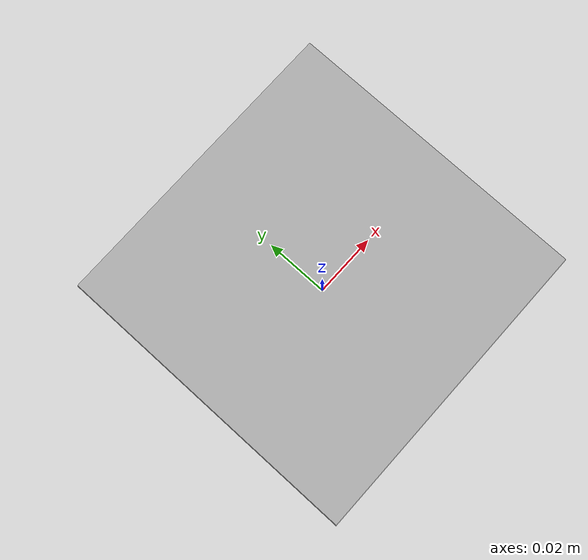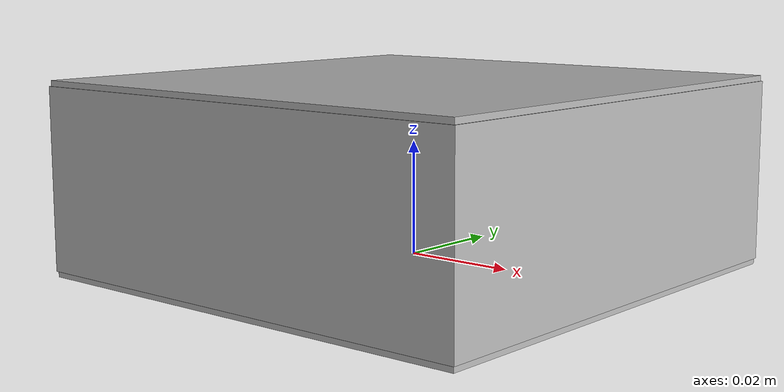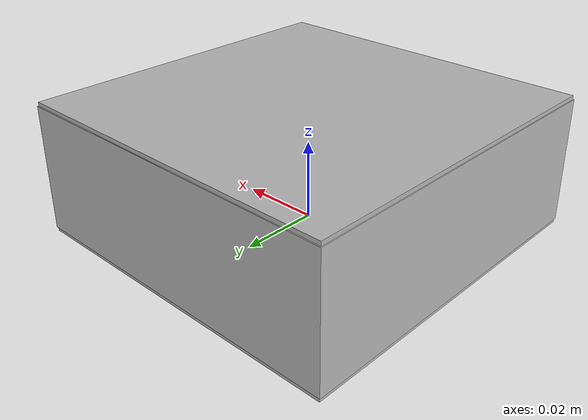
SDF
<?xml version="1.0"?>
<sdf version="1.6">
  <model name="electric">
    <pose>0 0 0 0 0 0</pose>
    <static>false</static>
    <allow_auto_disable>false</allow_auto_disable>
    <self_collide>false</self_collide>

  <link name="electric_link">
      <pose>0 0 0 0 0 0</pose>
      <inertial>
        <mass>0.01</mass>
        <inertia>
          <ixx>0.01</ixx>
          <iyy>0.01</iyy>
          <izz>0.01</izz>
          <ixy>0</ixy>
          <ixz>0</ixz>
          <iyz>0</iyz>
        </inertia>
      </inertial>

      <velocity_decay>
        <linear>0.05</linear>
        <angular>0.05</angular>
      </velocity_decay>
  <collision name="electric_col">
        <pose>0 0 0.014 0 0 0</pose>
        <geometry>
          <box>
            <size>0.0875 0.0875 0.032</size>
          </box>
        </geometry>
        <surface>
          <contact>
            <ode>
              <kp>3000000</kp>
              <kd>300</kd>
              <max_vel>0.3</max_vel>
              <min_depth>0.03</min_depth>
            </ode>
          </contact>
          <friction>
            <ode>
              <mu>900.0</mu>
              <mu2>900.0</mu2>
              <slip1>0.0</slip1>
              <slip2>0.0</slip2>
            </ode>
          </friction>
          <bounce>
            <restitution_coefficient>0.2</restitution_coefficient>
          </bounce>
        </surface>
        <laser_retro>0.0</laser_retro>
        <max_contacts>5</max_contacts>
      </collision>

      <!-- Primary visual (untextured DAE mesh) -->
  <visual name="electric_vis_base">
        <pose>0 0 0.014 0 0 0</pose>
        <geometry>
          <box>
            <size>0.0875 0.0875 0.032</size>
          </box>
        </geometry>
      </visual>

      <!-- Decal visuals to display the texture on the caps -->
  <visual name="electric_vis_decal_top">
        <pose>0 0 0.0305 0 0 0</pose>
        <geometry>
          <box><size>0.087 0.087 0.001</size></box>
        </geometry>
        <material>
          <script>
            <uri>model://electric/materials/scripts</uri>
            <uri>model://electric/materials/textures</uri>
            <name>Task5ElectricMaterial</name>
          </script>
        </material>
      </visual>

  <visual name="electric_vis_decal_bot">
        <pose>0 0 -0.0025 0 3.14159 0</pose>
        <geometry>
          <box><size>0.087 0.087 0.001</size></box>
        </geometry>
        <material>
          <script>
            <uri>model://electric/materials/scripts</uri>
            <uri>model://electric/materials/textures</uri>
            <name>Task5ElectricMaterial</name>
          </script>
        </material>
      </visual>

    </link>
  </model>
</sdf>
